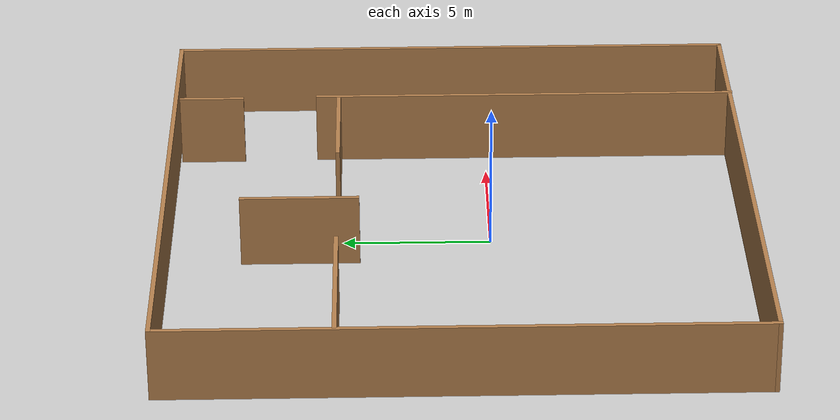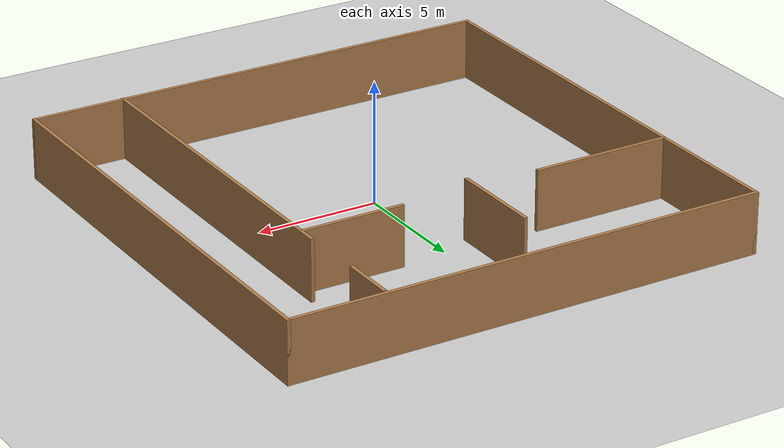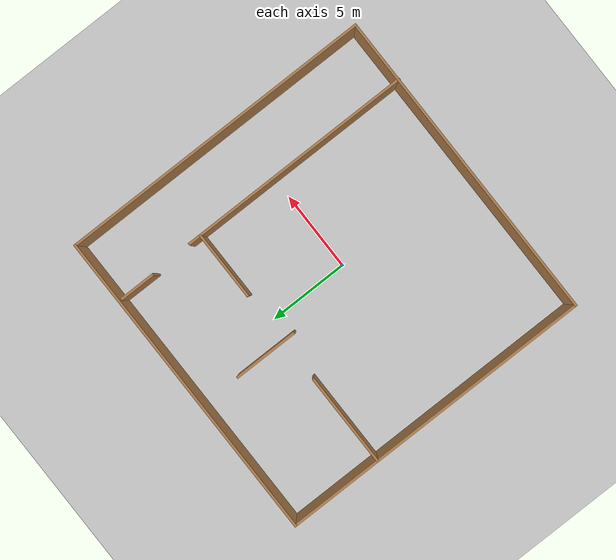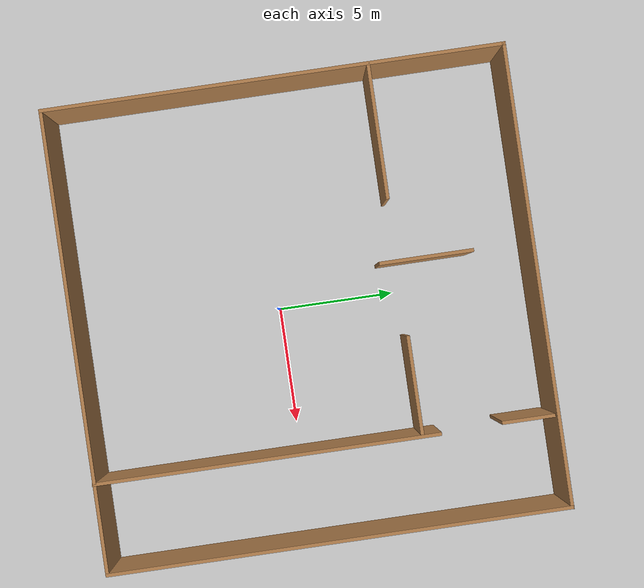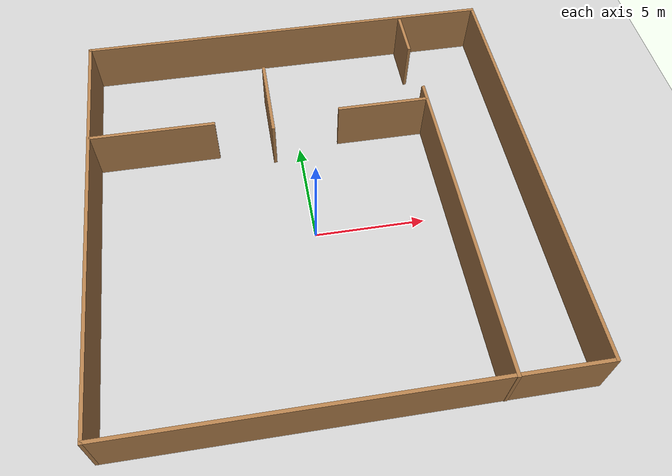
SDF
<sdf version="1.7">
 <world name="default">
  <light name="sun" type="directional">
   <pose>0 0 10 0 -0 0</pose>
   <diffuse>0.8 0.8 0.8 1</diffuse>
   <specular>0.2 0.2 0.2 1</specular>
   <attenuation>
    <range>1000</range>
    <constant>0.9</constant>
    <linear>0.01</linear>
    <quadratic>0.001</quadratic>
   </attenuation>
   <direction>-0.5 0.1 -0.9</direction>
   <spot><inner_angle>0</inner_angle><outer_angle>0</outer_angle><falloff>0</falloff></spot>
  </light>
  <model name="ground_plane">
   <static>1</static>
   <link name="link">
    <collision name="collision">
     <geometry><plane><normal>0 0 1</normal><size>100 100</size></plane></geometry>
     <surface>
      <contact><collide_bitmask>65535</collide_bitmask></contact>
      <friction><ode><mu>100</mu><mu2>50</mu2></ode></friction>
     </surface>
    </collision>
    <visual name="visual">
     <cast_shadows>0</cast_shadows>
     <geometry><plane><normal>0 0 1</normal><size>100 100</size></plane></geometry>
     <material>
      <script><uri>file://media/materials/scripts/gazebo.material</uri><name>Gazebo/Grey</name></script>
     </material>
    </visual>
   </link>
  </model>
  <gravity>0 0 -9.8</gravity>
  <magnetic_field>6e-06 2.3e-05 -4.2e-05</magnetic_field>
  <atmosphere type="adiabatic"/>
  <physics type="ode">
   <max_step_size>0.001</max_step_size>
   <real_time_factor>1</real_time_factor>
   <real_time_update_rate>1000</real_time_update_rate>
  </physics>
  <scene><ambient>0.4 0.4 0.4 1</ambient><background>0.7 0.7 0.7 1</background><shadows>1</shadows></scene>
  <spherical_coordinates>
   <surface_model>EARTH_WGS84</surface_model>
   <latitude_deg>0</latitude_deg>
   <longitude_deg>0</longitude_deg>
   <elevation>0</elevation>
   <heading_deg>0</heading_deg>
  </spherical_coordinates>
  <model name="small_env">
   <pose>0.162078 1.11718 0 0 -0 0</pose>
   <link name="Wall_0">
    <collision name="Wall_0_Collision">
     <geometry><box><size>19.75 0.15 2.5</size></box></geometry>
     <pose>0 0 1.25 0 -0 0</pose>
    </collision>
    <visual name="Wall_0_Visual">
     <pose>0 0 1.25 0 -0 0</pose>
     <geometry><box><size>19.75 0.15 2.5</size></box></geometry>
     <material>
      <script><uri>file://media/materials/scripts/gazebo.material</uri><name>Gazebo/Wood</name></script>
      <ambient>1 1 1 1</ambient>
     </material>
     <meta><layer>0</layer></meta>
    </visual>
    <pose>0 9.81058 0 0 -0 0</pose>
   </link>
   <link name="Wall_10">
    <collision name="Wall_10_Collision">
     <geometry><box><size>2.25 0.15 2.5</size></box></geometry>
     <pose>0 0 1.25 0 -0 0</pose>
    </collision>
    <visual name="Wall_10_Visual">
     <pose>0 0 1.25 0 -0 0</pose>
     <geometry><box><size>2.25 0.15 2.5</size></box></geometry>
     <material>
      <script><uri>file://media/materials/scripts/gazebo.material</uri><name>Gazebo/Wood</name></script>
      <ambient>1 1 1 1</ambient>
     </material>
     <meta><layer>0</layer></meta>
    </visual>
    <pose>5.89942 8.54527 0 0 -0 -1.5708</pose>
   </link>
   <link name="Wall_12">
    <collision name="Wall_12_Collision">
     <geometry><box><size>5.75 0.15 2.5</size></box></geometry>
     <pose>0 0 1.25 0 -0 0</pose>
    </collision>
    <visual name="Wall_12_Visual">
     <pose>0 0 1.25 0 -0 0</pose>
     <geometry><box><size>5.75 0.15 2.5</size></box></geometry>
     <material>
      <script><uri>file://media/materials/scripts/gazebo.material</uri><name>Gazebo/Wood</name></script>
      <ambient>1 1 1 1</ambient>
     </material>
     <meta><layer>0</layer></meta>
    </visual>
    <pose>-6.92374 4.06207 0 0 -0 0</pose>
   </link>
   <link name="Wall_14">
    <collision name="Wall_14_Collision">
     <geometry><box><size>4.25 0.15 2.5</size></box></geometry>
     <pose>0 0 1.25 0 -0 0</pose>
    </collision>
    <visual name="Wall_14_Visual">
     <pose>0 0 1.25 0 -0 0</pose>
     <geometry><box><size>4.25 0.15 2.5</size></box></geometry>
     <material>
      <script><uri>file://media/materials/scripts/gazebo.material</uri><name>Gazebo/Wood</name></script>
      <ambient>1 1 1 1</ambient>
     </material>
     <meta><layer>0</layer></meta>
    </visual>
    <pose>3.84942 4.06207 0 0 -0 3.14159</pose>
   </link>
   <link name="Wall_16">
    <collision name="Wall_16_Collision">
     <geometry><box><size>4 0.15 2.5</size></box></geometry>
     <pose>0 0 1.25 0 -0 0</pose>
    </collision>
    <visual name="Wall_16_Visual">
     <pose>0 0 1.25 0 -0 0</pose>
     <geometry><box><size>4 0.15 2.5</size></box></geometry>
     <material>
      <script><uri>file://media/materials/scripts/gazebo.material</uri><name>Gazebo/Wood</name></script>
      <ambient>1 1 1 1</ambient>
     </material>
     <meta><layer>0</layer></meta>
    </visual>
    <pose>-1.42394 5.31052 0 0 -0 -1.5708</pose>
   </link>
   <link name="Wall_2">
    <collision name="Wall_2_Collision">
     <geometry><box><size>19.75 0.15 2.5</size></box></geometry>
     <pose>0 0 1.25 0 -0 0</pose>
    </collision>
    <visual name="Wall_2_Visual">
     <pose>0 0 1.25 0 -0 0</pose>
     <geometry><box><size>19.75 0.15 2.5</size></box></geometry>
     <material>
      <script><uri>file://media/materials/scripts/gazebo.material</uri><name>Gazebo/Wood</name></script>
      <ambient>1 1 1 1</ambient>
     </material>
     <meta><layer>0</layer></meta>
    </visual>
    <pose>9.8 0.01058 0 0 -0 -1.5708</pose>
   </link>
   <link name="Wall_3">
    <collision name="Wall_3_Collision">
     <geometry><box><size>19.75 0.15 2.5</size></box></geometry>
     <pose>0 0 1.25 0 -0 0</pose>
    </collision>
    <visual name="Wall_3_Visual">
     <pose>0 0 1.25 0 -0 0</pose>
     <geometry><box><size>19.75 0.15 2.5</size></box></geometry>
     <material>
      <script><uri>file://media/materials/scripts/gazebo.material</uri><name>Gazebo/Wood</name></script>
      <ambient>1 1 1 1</ambient>
     </material>
     <meta><layer>0</layer></meta>
    </visual>
    <pose>0 -9.78942 0 0 -0 3.14159</pose>
   </link>
   <link name="Wall_4">
    <collision name="Wall_4_Collision">
     <geometry><box><size>19.75 0.15 2.5</size></box></geometry>
     <pose>0 0 1.25 0 -0 0</pose>
    </collision>
    <visual name="Wall_4_Visual">
     <pose>0 0 1.25 0 -0 0</pose>
     <geometry><box><size>19.75 0.15 2.5</size></box></geometry>
     <material>
      <script><uri>file://media/materials/scripts/gazebo.material</uri><name>Gazebo/Wood</name></script>
      <ambient>1 1 1 1</ambient>
     </material>
     <meta><layer>0</layer></meta>
    </visual>
    <pose>-9.8 0.01058 0 0 -0 1.5708</pose>
   </link>
   <link name="Wall_6">
    <collision name="Wall_6_Collision">
     <geometry><box><size>14.75 0.15 2.5</size></box></geometry>
     <pose>0 0 1.25 0 -0 0</pose>
    </collision>
    <visual name="Wall_6_Visual">
     <pose>0 0 1.25 0 -0 0</pose>
     <geometry><box><size>14.75 0.15 2.5</size></box></geometry>
     <material>
      <script><uri>file://media/materials/scripts/gazebo.material</uri><name>Gazebo/Wood</name></script>
      <ambient>1 1 1 1</ambient>
     </material>
     <meta><layer>0</layer></meta>
    </visual>
    <pose>5.98237 -2.51058 0 0 -0 -1.5708</pose>
   </link>
   <static>1</static>
  </model>
 </world>
</sdf>
